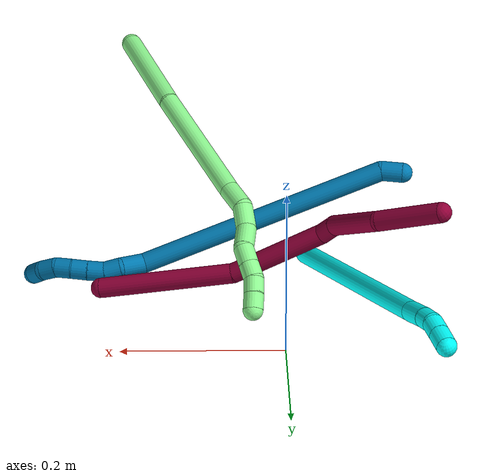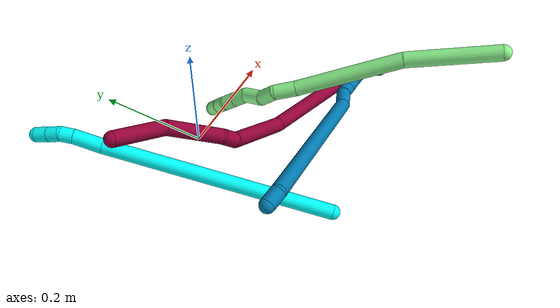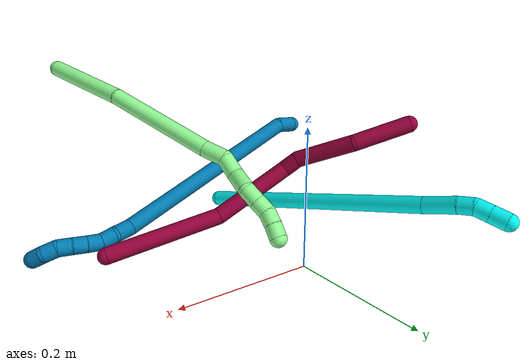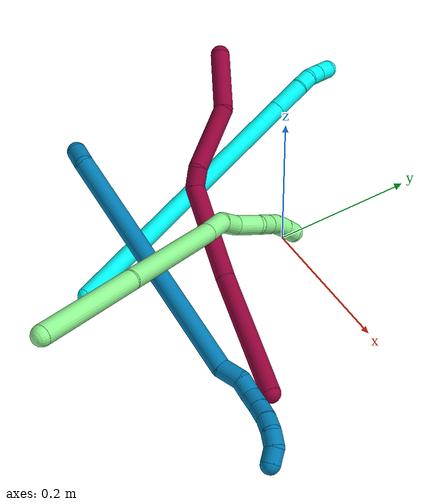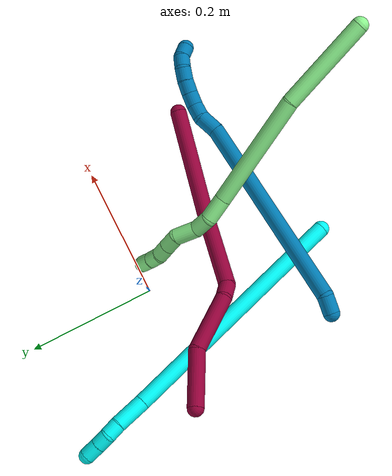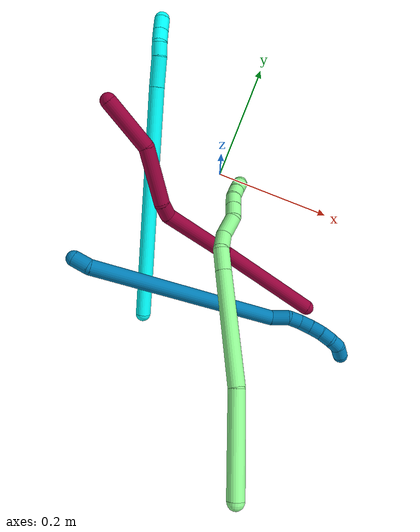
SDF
<sdf version="1.7">
 <world name="default">
  <model name="3">
   <static>0</static>
   <link name="3">
    <collision name="collision-cylinder-e_1_1_4">
     <pose>-0.020773 0.160827 0.103542 -0.998784 -0.10818 0.059054</pose>
     <geometry><cylinder><radius>0.0125</radius><length>0.3848</length></cylinder></geometry>
     <surface>
      <friction><ode><mu>1.16</mu><mu2>1.16</mu2><slip1>0</slip1><slip2>0</slip2></ode></friction>
      <contact><ode><kp>1e+06</kp><kd>1</kd><max_vel>0</max_vel><min_depth>0.001</min_depth></ode></contact>
     </surface>
    </collision>
    <visual name="visual-cylinder-e_1_1_4">
     <pose>-0.020773 0.160827 0.103542 -0.998784 -0.10818 0.059054</pose>
     <geometry><cylinder><radius>0.0125</radius><length>0.3848</length></cylinder></geometry>
     <material><ambient>0.003922 1 0.996078 1</ambient></material>
    </visual>
    <collision name="collision-cylinder-e_2_4_5">
     <pose>-0.043841 0.34127 0.221126 -0.949511 -0.094819 0.04876</pose>
     <geometry><cylinder><radius>0.0125</radius><length>0.048466</length></cylinder></geometry>
     <surface>
      <friction><ode><mu>1.16</mu><mu2>1.16</mu2><slip1>0</slip1><slip2>0</slip2></ode></friction>
      <contact><ode><kp>1e+06</kp><kd>1</kd><max_vel>0</max_vel><min_depth>0.001</min_depth></ode></contact>
     </surface>
    </collision>
    <visual name="visual-cylinder-e_2_4_5">
     <pose>-0.043841 0.34127 0.221126 -0.949511 -0.094819 0.04876</pose>
     <geometry><cylinder><radius>0.0125</radius><length>0.048466</length></cylinder></geometry>
     <material><ambient>0.003922 1 0.996078 1</ambient></material>
    </visual>
    <collision name="collision-cylinder-e_3_5_6">
     <pose>-0.047539 0.370578 0.240147 -1.09628 -0.128161 0.078316</pose>
     <geometry><cylinder><radius>0.0125</radius><length>0.021972</length></cylinder></geometry>
     <surface>
      <friction><ode><mu>1.16</mu><mu2>1.16</mu2><slip1>0</slip1><slip2>0</slip2></ode></friction>
      <contact><ode><kp>1e+06</kp><kd>1</kd><max_vel>0</max_vel><min_depth>0.001</min_depth></ode></contact>
     </surface>
    </collision>
    <visual name="visual-cylinder-e_3_5_6">
     <pose>-0.047539 0.370578 0.240147 -1.09628 -0.128161 0.078316</pose>
     <geometry><cylinder><radius>0.0125</radius><length>0.021972</length></cylinder></geometry>
     <material><ambient>0.003922 1 0.996078 1</ambient></material>
    </visual>
    <collision name="collision-cylinder-e_4_6_7">
     <pose>-0.048697 0.39068 0.246556 -1.43425 0.023457 -0.020454</pose>
     <geometry><cylinder><radius>0.0125</radius><length>0.021021</length></cylinder></geometry>
     <surface>
      <friction><ode><mu>1.16</mu><mu2>1.16</mu2><slip1>0</slip1><slip2>0</slip2></ode></friction>
      <contact><ode><kp>1e+06</kp><kd>1</kd><max_vel>0</max_vel><min_depth>0.001</min_depth></ode></contact>
     </surface>
    </collision>
    <visual name="visual-cylinder-e_4_6_7">
     <pose>-0.048697 0.39068 0.246556 -1.43425 0.023457 -0.020454</pose>
     <geometry><cylinder><radius>0.0125</radius><length>0.021021</length></cylinder></geometry>
     <material><ambient>0.003922 1 0.996078 1</ambient></material>
    </visual>
    <collision name="collision-cylinder-e_5_7_2">
     <pose>-0.047912 0.412819 0.249725 -1.42361 0.045369 -0.03914</pose>
     <geometry><cylinder><radius>0.0125</radius><length>0.023741</length></cylinder></geometry>
     <surface>
      <friction><ode><mu>1.16</mu><mu2>1.16</mu2><slip1>0</slip1><slip2>0</slip2></ode></friction>
      <contact><ode><kp>1e+06</kp><kd>1</kd><max_vel>0</max_vel><min_depth>0.001</min_depth></ode></contact>
     </surface>
    </collision>
    <visual name="visual-cylinder-e_5_7_2">
     <pose>-0.047912 0.412819 0.249725 -1.42361 0.045369 -0.03914</pose>
     <geometry><cylinder><radius>0.0125</radius><length>0.023741</length></cylinder></geometry>
     <material><ambient>0.003922 1 0.996078 1</ambient></material>
    </visual>
    <collision name="collision-sphere-2">
     <pose>-0.047374 0.42455 0.251464 0 -0 0</pose>
     <geometry><sphere><radius>0.0125</radius></sphere></geometry>
     <surface>
      <friction><ode><mu>1.16</mu><mu2>1.16</mu2><slip1>0</slip1><slip2>0</slip2></ode></friction>
      <contact><ode><kp>1e+06</kp><kd>1</kd><max_vel>0</max_vel><min_depth>0.001</min_depth></ode></contact>
     </surface>
    </collision>
    <visual name="visual-sphere-2">
     <pose>-0.047374 0.42455 0.251464 0 -0 0</pose>
     <geometry><sphere><radius>0.0125</radius></sphere></geometry>
     <material><ambient>0.003922 1 0.996078 1</ambient></material>
    </visual>
    <collision name="collision-sphere-7">
     <pose>-0.04845 0.401089 0.247986 0 -0 0</pose>
     <geometry><sphere><radius>0.0125</radius></sphere></geometry>
     <surface>
      <friction><ode><mu>1.16</mu><mu2>1.16</mu2><slip1>0</slip1><slip2>0</slip2></ode></friction>
      <contact><ode><kp>1e+06</kp><kd>1</kd><max_vel>0</max_vel><min_depth>0.001</min_depth></ode></contact>
     </surface>
    </collision>
    <visual name="visual-sphere-7">
     <pose>-0.04845 0.401089 0.247986 0 -0 0</pose>
     <geometry><sphere><radius>0.0125</radius></sphere></geometry>
     <material><ambient>0.003922 1 0.996078 1</ambient></material>
    </visual>
    <collision name="collision-sphere-6">
     <pose>-0.048943 0.38027 0.245125 0 -0 0</pose>
     <geometry><sphere><radius>0.0125</radius></sphere></geometry>
     <surface>
      <friction><ode><mu>1.16</mu><mu2>1.16</mu2><slip1>0</slip1><slip2>0</slip2></ode></friction>
      <contact><ode><kp>1e+06</kp><kd>1</kd><max_vel>0</max_vel><min_depth>0.001</min_depth></ode></contact>
     </surface>
    </collision>
    <visual name="visual-sphere-6">
     <pose>-0.048943 0.38027 0.245125 0 -0 0</pose>
     <geometry><sphere><radius>0.0125</radius></sphere></geometry>
     <material><ambient>0.003922 1 0.996078 1</ambient></material>
    </visual>
    <collision name="collision-sphere-5">
     <pose>-0.046135 0.360886 0.235168 0 -0 0</pose>
     <geometry><sphere><radius>0.0125</radius></sphere></geometry>
     <surface>
      <friction><ode><mu>1.16</mu><mu2>1.16</mu2><slip1>0</slip1><slip2>0</slip2></ode></friction>
      <contact><ode><kp>1e+06</kp><kd>1</kd><max_vel>0</max_vel><min_depth>0.001</min_depth></ode></contact>
     </surface>
    </collision>
    <visual name="visual-sphere-5">
     <pose>-0.046135 0.360886 0.235168 0 -0 0</pose>
     <geometry><sphere><radius>0.0125</radius></sphere></geometry>
     <material><ambient>0.003922 1 0.996078 1</ambient></material>
    </visual>
    <collision name="collision-sphere-1">
     <geometry><sphere><radius>0.0125</radius></sphere></geometry>
     <surface>
      <friction><ode><mu>1.16</mu><mu2>1.16</mu2><slip1>0</slip1><slip2>0</slip2></ode></friction>
      <contact><ode><kp>1e+06</kp><kd>1</kd><max_vel>0</max_vel><min_depth>0.001</min_depth></ode></contact>
     </surface>
    </collision>
    <visual name="visual-sphere-1">
     <geometry><sphere><radius>0.0125</radius></sphere></geometry>
     <material><ambient>0.003922 1 0.996078 1</ambient></material>
    </visual>
    <collision name="collision-sphere-4">
     <pose>-0.041546 0.321654 0.207084 0 -0 0</pose>
     <geometry><sphere><radius>0.0125</radius></sphere></geometry>
     <surface>
      <friction><ode><mu>1.16</mu><mu2>1.16</mu2><slip1>0</slip1><slip2>0</slip2></ode></friction>
      <contact><ode><kp>1e+06</kp><kd>1</kd><max_vel>0</max_vel><min_depth>0.001</min_depth></ode></contact>
     </surface>
    </collision>
    <visual name="visual-sphere-4">
     <pose>-0.041546 0.321654 0.207084 0 -0 0</pose>
     <geometry><sphere><radius>0.0125</radius></sphere></geometry>
     <material><ambient>0.003922 1 0.996078 1</ambient></material>
    </visual>
    <inertial>
     <pose>-0.026648 0.209163 0.133896 0 -0 0</pose>
     <mass>0.5</mass>
     <inertia>
      <ixx>0.00502</ixx>
      <ixy>0</ixy>
      <ixz>0</ixz>
      <iyy>0.002921</iyy>
      <iyz>0</iyz>
      <izz>-0.003461</izz>
     </inertia>
    </inertial>
   </link>
   <pose>-0.034795 -0.277907 0.01247 -0.406849 0.355201 0.250322</pose>
  </model>
  <model name="8">
   <static>0</static>
   <link name="8">
    <collision name="collision-cylinder-e_1_1_4">
     <pose>-0.07553 -0.034925 -0.021851 2.12986 -1.07146 -1.63994</pose>
     <geometry><cylinder><radius>0.0125</radius><length>0.17207</length></cylinder></geometry>
     <surface>
      <friction><ode><mu>1.16</mu><mu2>1.16</mu2><slip1>0</slip1><slip2>0</slip2></ode></friction>
      <contact><ode><kp>1e+06</kp><kd>1</kd><max_vel>0</max_vel><min_depth>0.001</min_depth></ode></contact>
     </surface>
    </collision>
    <visual name="visual-cylinder-e_1_1_4">
     <pose>-0.07553 -0.034925 -0.021851 2.12986 -1.07146 -1.63994</pose>
     <geometry><cylinder><radius>0.0125</radius><length>0.17207</length></cylinder></geometry>
     <material><ambient>0.584314 0 0.227451 1</ambient></material>
    </visual>
    <collision name="collision-cylinder-e_2_4_5">
     <pose>-0.204143 -0.103672 -0.042836 1.54524 -1.00336 -0.981948</pose>
     <geometry><cylinder><radius>0.0125</radius><length>0.125896</length></cylinder></geometry>
     <surface>
      <friction><ode><mu>1.16</mu><mu2>1.16</mu2><slip1>0</slip1><slip2>0</slip2></ode></friction>
      <contact><ode><kp>1e+06</kp><kd>1</kd><max_vel>0</max_vel><min_depth>0.001</min_depth></ode></contact>
     </surface>
    </collision>
    <visual name="visual-cylinder-e_2_4_5">
     <pose>-0.204143 -0.103672 -0.042836 1.54524 -1.00336 -0.981948</pose>
     <geometry><cylinder><radius>0.0125</radius><length>0.125896</length></cylinder></geometry>
     <material><ambient>0.584314 0 0.227451 1</ambient></material>
    </visual>
    <collision name="collision-cylinder-e_3_5_6">
     <pose>-0.268538 -0.140253 -0.037058 0.511633 -1.10863 -0.321039</pose>
     <geometry><cylinder><radius>0.0125</radius><length>0.025276</length></cylinder></geometry>
     <surface>
      <friction><ode><mu>1.16</mu><mu2>1.16</mu2><slip1>0</slip1><slip2>0</slip2></ode></friction>
      <contact><ode><kp>1e+06</kp><kd>1</kd><max_vel>0</max_vel><min_depth>0.001</min_depth></ode></contact>
     </surface>
    </collision>
    <visual name="visual-cylinder-e_3_5_6">
     <pose>-0.268538 -0.140253 -0.037058 0.511633 -1.10863 -0.321039</pose>
     <geometry><cylinder><radius>0.0125</radius><length>0.025276</length></cylinder></geometry>
     <material><ambient>0.584314 0 0.227451 1</ambient></material>
    </visual>
    <collision name="collision-cylinder-e_4_6_7">
     <pose>-0.323594 -0.138595 -0.021585 -0.39619 -1.31488 0.307482</pose>
     <geometry><cylinder><radius>0.0125</radius><length>0.090434</length></cylinder></geometry>
     <surface>
      <friction><ode><mu>1.16</mu><mu2>1.16</mu2><slip1>0</slip1><slip2>0</slip2></ode></friction>
      <contact><ode><kp>1e+06</kp><kd>1</kd><max_vel>0</max_vel><min_depth>0.001</min_depth></ode></contact>
     </surface>
    </collision>
    <visual name="visual-cylinder-e_4_6_7">
     <pose>-0.323594 -0.138595 -0.021585 -0.39619 -1.31488 0.307482</pose>
     <geometry><cylinder><radius>0.0125</radius><length>0.090434</length></cylinder></geometry>
     <material><ambient>0.584314 0 0.227451 1</ambient></material>
    </visual>
    <collision name="collision-cylinder-e_5_7_2">
     <pose>-0.409301 -0.144106 -0.012916 1.75886 -1.33445 -1.52142</pose>
     <geometry><cylinder><radius>0.0125</radius><length>0.086325</length></cylinder></geometry>
     <surface>
      <friction><ode><mu>1.16</mu><mu2>1.16</mu2><slip1>0</slip1><slip2>0</slip2></ode></friction>
      <contact><ode><kp>1e+06</kp><kd>1</kd><max_vel>0</max_vel><min_depth>0.001</min_depth></ode></contact>
     </surface>
    </collision>
    <visual name="visual-cylinder-e_5_7_2">
     <pose>-0.409301 -0.144106 -0.012916 1.75886 -1.33445 -1.52142</pose>
     <geometry><cylinder><radius>0.0125</radius><length>0.086325</length></cylinder></geometry>
     <material><ambient>0.584314 0 0.227451 1</ambient></material>
    </visual>
    <collision name="collision-sphere-2">
     <pose>-0.451263 -0.154034 -0.014805 0 -0 0</pose>
     <geometry><sphere><radius>0.0125</radius></sphere></geometry>
     <surface>
      <friction><ode><mu>1.16</mu><mu2>1.16</mu2><slip1>0</slip1><slip2>0</slip2></ode></friction>
      <contact><ode><kp>1e+06</kp><kd>1</kd><max_vel>0</max_vel><min_depth>0.001</min_depth></ode></contact>
     </surface>
    </collision>
    <visual name="visual-sphere-2">
     <pose>-0.451263 -0.154034 -0.014805 0 -0 0</pose>
     <geometry><sphere><radius>0.0125</radius></sphere></geometry>
     <material><ambient>0.584314 0 0.227451 1</ambient></material>
    </visual>
    <collision name="collision-sphere-7">
     <pose>-0.367338 -0.134178 -0.011026 0 -0 0</pose>
     <geometry><sphere><radius>0.0125</radius></sphere></geometry>
     <surface>
      <friction><ode><mu>1.16</mu><mu2>1.16</mu2><slip1>0</slip1><slip2>0</slip2></ode></friction>
      <contact><ode><kp>1e+06</kp><kd>1</kd><max_vel>0</max_vel><min_depth>0.001</min_depth></ode></contact>
     </surface>
    </collision>
    <visual name="visual-sphere-7">
     <pose>-0.367338 -0.134178 -0.011026 0 -0 0</pose>
     <geometry><sphere><radius>0.0125</radius></sphere></geometry>
     <material><ambient>0.584314 0 0.227451 1</ambient></material>
    </visual>
    <collision name="collision-sphere-6">
     <pose>-0.27985 -0.143012 -0.032145 0 -0 0</pose>
     <geometry><sphere><radius>0.0125</radius></sphere></geometry>
     <surface>
      <friction><ode><mu>1.16</mu><mu2>1.16</mu2><slip1>0</slip1><slip2>0</slip2></ode></friction>
      <contact><ode><kp>1e+06</kp><kd>1</kd><max_vel>0</max_vel><min_depth>0.001</min_depth></ode></contact>
     </surface>
    </collision>
    <visual name="visual-sphere-6">
     <pose>-0.27985 -0.143012 -0.032145 0 -0 0</pose>
     <geometry><sphere><radius>0.0125</radius></sphere></geometry>
     <material><ambient>0.584314 0 0.227451 1</ambient></material>
    </visual>
    <collision name="collision-sphere-5">
     <pose>-0.257226 -0.137494 -0.041972 0 -0 0</pose>
     <geometry><sphere><radius>0.0125</radius></sphere></geometry>
     <surface>
      <friction><ode><mu>1.16</mu><mu2>1.16</mu2><slip1>0</slip1><slip2>0</slip2></ode></friction>
      <contact><ode><kp>1e+06</kp><kd>1</kd><max_vel>0</max_vel><min_depth>0.001</min_depth></ode></contact>
     </surface>
    </collision>
    <visual name="visual-sphere-5">
     <pose>-0.257226 -0.137494 -0.041972 0 -0 0</pose>
     <geometry><sphere><radius>0.0125</radius></sphere></geometry>
     <material><ambient>0.584314 0 0.227451 1</ambient></material>
    </visual>
    <collision name="collision-sphere-1">
     <geometry><sphere><radius>0.0125</radius></sphere></geometry>
     <surface>
      <friction><ode><mu>1.16</mu><mu2>1.16</mu2><slip1>0</slip1><slip2>0</slip2></ode></friction>
      <contact><ode><kp>1e+06</kp><kd>1</kd><max_vel>0</max_vel><min_depth>0.001</min_depth></ode></contact>
     </surface>
    </collision>
    <visual name="visual-sphere-1">
     <geometry><sphere><radius>0.0125</radius></sphere></geometry>
     <material><ambient>0.584314 0 0.227451 1</ambient></material>
    </visual>
    <collision name="collision-sphere-4">
     <pose>-0.151061 -0.06985 -0.043701 0 -0 0</pose>
     <geometry><sphere><radius>0.0125</radius></sphere></geometry>
     <surface>
      <friction><ode><mu>1.16</mu><mu2>1.16</mu2><slip1>0</slip1><slip2>0</slip2></ode></friction>
      <contact><ode><kp>1e+06</kp><kd>1</kd><max_vel>0</max_vel><min_depth>0.001</min_depth></ode></contact>
     </surface>
    </collision>
    <visual name="visual-sphere-4">
     <pose>-0.151061 -0.06985 -0.043701 0 -0 0</pose>
     <geometry><sphere><radius>0.0125</radius></sphere></geometry>
     <material><ambient>0.584314 0 0.227451 1</ambient></material>
    </visual>
    <inertial>
     <pose>-0.220163 -0.09516 -0.026313 0 -0 0</pose>
     <mass>0.5</mass>
     <inertia>
      <ixx>-0.000272</ixx>
      <ixy>0</ixy>
      <ixz>0</ixz>
      <iyy>0.000276</iyy>
      <iyz>0</iyz>
      <izz>0.000917</izz>
     </inertia>
    </inertial>
   </link>
   <pose>0.225449 -0.163772 0.014687 -0.556108 0.228023 -0.729064</pose>
  </model>
  <model name="9">
   <static>0</static>
   <link name="9">
    <collision name="collision-cylinder-e_1_1_4">
     <pose>0.007217 0.006273 0.009375 -0.589666 0.569129 -0.177192</pose>
     <geometry><cylinder><radius>0.0125</radius><length>0.026783</length></cylinder></geometry>
     <surface>
      <friction><ode><mu>1.16</mu><mu2>1.16</mu2><slip1>0</slip1><slip2>0</slip2></ode></friction>
      <contact><ode><kp>1e+06</kp><kd>1</kd><max_vel>0</max_vel><min_depth>0.001</min_depth></ode></contact>
     </surface>
    </collision>
    <visual name="visual-cylinder-e_1_1_4">
     <pose>0.007217 0.006273 0.009375 -0.589666 0.569129 -0.177192</pose>
     <geometry><cylinder><radius>0.0125</radius><length>0.026783</length></cylinder></geometry>
     <material><ambient>0 0.490196 0.709804 1</ambient></material>
    </visual>
    <collision name="collision-cylinder-e_2_4_5">
     <pose>0.140917 0.095302 0.070564 -1.01141 0.913404 -0.531293</pose>
     <geometry><cylinder><radius>0.0125</radius><length>0.31957</length></cylinder></geometry>
     <surface>
      <friction><ode><mu>1.16</mu><mu2>1.16</mu2><slip1>0</slip1><slip2>0</slip2></ode></friction>
      <contact><ode><kp>1e+06</kp><kd>1</kd><max_vel>0</max_vel><min_depth>0.001</min_depth></ode></contact>
     </surface>
    </collision>
    <visual name="visual-cylinder-e_2_4_5">
     <pose>0.140917 0.095302 0.070564 -1.01141 0.913404 -0.531293</pose>
     <geometry><cylinder><radius>0.0125</radius><length>0.31957</length></cylinder></geometry>
     <material><ambient>0 0.490196 0.709804 1</ambient></material>
    </visual>
    <collision name="collision-cylinder-e_3_5_6">
     <pose>0.274604 0.190574 0.127764 -1.16431 0.486239 -0.323671</pose>
     <geometry><cylinder><radius>0.0125</radius><length>0.030827</length></cylinder></geometry>
     <surface>
      <friction><ode><mu>1.16</mu><mu2>1.16</mu2><slip1>0</slip1><slip2>0</slip2></ode></friction>
      <contact><ode><kp>1e+06</kp><kd>1</kd><max_vel>0</max_vel><min_depth>0.001</min_depth></ode></contact>
     </surface>
    </collision>
    <visual name="visual-cylinder-e_3_5_6">
     <pose>0.274604 0.190574 0.127764 -1.16431 0.486239 -0.323671</pose>
     <geometry><cylinder><radius>0.0125</radius><length>0.030827</length></cylinder></geometry>
     <material><ambient>0 0.490196 0.709804 1</ambient></material>
    </visual>
    <collision name="collision-cylinder-e_4_6_7">
     <pose>0.289933 0.208496 0.137797 -0.860895 0.850807 -0.410214</pose>
     <geometry><cylinder><radius>0.0125</radius><length>0.021619</length></cylinder></geometry>
     <surface>
      <friction><ode><mu>1.16</mu><mu2>1.16</mu2><slip1>0</slip1><slip2>0</slip2></ode></friction>
      <contact><ode><kp>1e+06</kp><kd>1</kd><max_vel>0</max_vel><min_depth>0.001</min_depth></ode></contact>
     </surface>
    </collision>
    <visual name="visual-cylinder-e_4_6_7">
     <pose>0.289933 0.208496 0.137797 -0.860895 0.850807 -0.410214</pose>
     <geometry><cylinder><radius>0.0125</radius><length>0.021619</length></cylinder></geometry>
     <material><ambient>0 0.490196 0.709804 1</ambient></material>
    </visual>
    <collision name="collision-cylinder-e_5_7_8">
     <pose>0.30362 0.219292 0.149649 -0.642216 0.553419 -0.188366</pose>
     <geometry><cylinder><radius>0.0125</radius><length>0.021155</length></cylinder></geometry>
     <surface>
      <friction><ode><mu>1.16</mu><mu2>1.16</mu2><slip1>0</slip1><slip2>0</slip2></ode></friction>
      <contact><ode><kp>1e+06</kp><kd>1</kd><max_vel>0</max_vel><min_depth>0.001</min_depth></ode></contact>
     </surface>
    </collision>
    <visual name="visual-cylinder-e_5_7_8">
     <pose>0.30362 0.219292 0.149649 -0.642216 0.553419 -0.188366</pose>
     <geometry><cylinder><radius>0.0125</radius><length>0.021155</length></cylinder></geometry>
     <material><ambient>0 0.490196 0.709804 1</ambient></material>
    </visual>
    <collision name="collision-cylinder-e_6_8_9">
     <pose>0.314464 0.229323 0.163981 -0.57728 0.556004 -0.16908</pose>
     <geometry><cylinder><radius>0.0125</radius><length>0.020025</length></cylinder></geometry>
     <surface>
      <friction><ode><mu>1.16</mu><mu2>1.16</mu2><slip1>0</slip1><slip2>0</slip2></ode></friction>
      <contact><ode><kp>1e+06</kp><kd>1</kd><max_vel>0</max_vel><min_depth>0.001</min_depth></ode></contact>
     </surface>
    </collision>
    <visual name="visual-cylinder-e_6_8_9">
     <pose>0.314464 0.229323 0.163981 -0.57728 0.556004 -0.16908</pose>
     <geometry><cylinder><radius>0.0125</radius><length>0.020025</length></cylinder></geometry>
     <material><ambient>0 0.490196 0.709804 1</ambient></material>
    </visual>
    <collision name="collision-cylinder-e_7_9_10">
     <pose>0.325754 0.237271 0.178395 -0.425958 0.643799 -0.143995</pose>
     <geometry><cylinder><radius>0.0125</radius><length>0.020011</length></cylinder></geometry>
     <surface>
      <friction><ode><mu>1.16</mu><mu2>1.16</mu2><slip1>0</slip1><slip2>0</slip2></ode></friction>
      <contact><ode><kp>1e+06</kp><kd>1</kd><max_vel>0</max_vel><min_depth>0.001</min_depth></ode></contact>
     </surface>
    </collision>
    <visual name="visual-cylinder-e_7_9_10">
     <pose>0.325754 0.237271 0.178395 -0.425958 0.643799 -0.143995</pose>
     <geometry><cylinder><radius>0.0125</radius><length>0.020011</length></cylinder></geometry>
     <material><ambient>0 0.490196 0.709804 1</ambient></material>
    </visual>
    <collision name="collision-cylinder-e_8_10_11">
     <pose>0.340152 0.242277 0.190855 -0.317504 0.995278 -0.173508</pose>
     <geometry><cylinder><radius>0.0125</radius><length>0.020007</length></cylinder></geometry>
     <surface>
      <friction><ode><mu>1.16</mu><mu2>1.16</mu2><slip1>0</slip1><slip2>0</slip2></ode></friction>
      <contact><ode><kp>1e+06</kp><kd>1</kd><max_vel>0</max_vel><min_depth>0.001</min_depth></ode></contact>
     </surface>
    </collision>
    <visual name="visual-cylinder-e_8_10_11">
     <pose>0.340152 0.242277 0.190855 -0.317504 0.995278 -0.173508</pose>
     <geometry><cylinder><radius>0.0125</radius><length>0.020007</length></cylinder></geometry>
     <material><ambient>0 0.490196 0.709804 1</ambient></material>
    </visual>
    <collision name="collision-cylinder-e_9_11_2">
     <pose>0.357095 0.241192 0.200404 0.566612 1.02546 0.324902</pose>
     <geometry><cylinder><radius>0.0125</radius><length>0.020003</length></cylinder></geometry>
     <surface>
      <friction><ode><mu>1.16</mu><mu2>1.16</mu2><slip1>0</slip1><slip2>0</slip2></ode></friction>
      <contact><ode><kp>1e+06</kp><kd>1</kd><max_vel>0</max_vel><min_depth>0.001</min_depth></ode></contact>
     </surface>
    </collision>
    <visual name="visual-cylinder-e_9_11_2">
     <pose>0.357095 0.241192 0.200404 0.566612 1.02546 0.324902</pose>
     <geometry><cylinder><radius>0.0125</radius><length>0.020003</length></cylinder></geometry>
     <material><ambient>0 0.490196 0.709804 1</ambient></material>
    </visual>
    <collision name="collision-sphere-2">
     <pose>0.365646 0.238408 0.204781 0 -0 0</pose>
     <geometry><sphere><radius>0.0125</radius></sphere></geometry>
     <surface>
      <friction><ode><mu>1.16</mu><mu2>1.16</mu2><slip1>0</slip1><slip2>0</slip2></ode></friction>
      <contact><ode><kp>1e+06</kp><kd>1</kd><max_vel>0</max_vel><min_depth>0.001</min_depth></ode></contact>
     </surface>
    </collision>
    <visual name="visual-sphere-2">
     <pose>0.365646 0.238408 0.204781 0 -0 0</pose>
     <geometry><sphere><radius>0.0125</radius></sphere></geometry>
     <material><ambient>0 0.490196 0.709804 1</ambient></material>
    </visual>
    <collision name="collision-sphere-11">
     <pose>0.348544 0.243977 0.196027 0 -0 0</pose>
     <geometry><sphere><radius>0.0125</radius></sphere></geometry>
     <surface>
      <friction><ode><mu>1.16</mu><mu2>1.16</mu2><slip1>0</slip1><slip2>0</slip2></ode></friction>
      <contact><ode><kp>1e+06</kp><kd>1</kd><max_vel>0</max_vel><min_depth>0.001</min_depth></ode></contact>
     </surface>
    </collision>
    <visual name="visual-sphere-11">
     <pose>0.348544 0.243977 0.196027 0 -0 0</pose>
     <geometry><sphere><radius>0.0125</radius></sphere></geometry>
     <material><ambient>0 0.490196 0.709804 1</ambient></material>
    </visual>
    <collision name="collision-sphere-10">
     <pose>0.33176 0.240578 0.185682 0 -0 0</pose>
     <geometry><sphere><radius>0.0125</radius></sphere></geometry>
     <surface>
      <friction><ode><mu>1.16</mu><mu2>1.16</mu2><slip1>0</slip1><slip2>0</slip2></ode></friction>
      <contact><ode><kp>1e+06</kp><kd>1</kd><max_vel>0</max_vel><min_depth>0.001</min_depth></ode></contact>
     </surface>
    </collision>
    <visual name="visual-sphere-10">
     <pose>0.33176 0.240578 0.185682 0 -0 0</pose>
     <geometry><sphere><radius>0.0125</radius></sphere></geometry>
     <material><ambient>0 0.490196 0.709804 1</ambient></material>
    </visual>
    <collision name="collision-sphere-9">
     <pose>0.319748 0.233964 0.171107 0 -0 0</pose>
     <geometry><sphere><radius>0.0125</radius></sphere></geometry>
     <surface>
      <friction><ode><mu>1.16</mu><mu2>1.16</mu2><slip1>0</slip1><slip2>0</slip2></ode></friction>
      <contact><ode><kp>1e+06</kp><kd>1</kd><max_vel>0</max_vel><min_depth>0.001</min_depth></ode></contact>
     </surface>
    </collision>
    <visual name="visual-sphere-9">
     <pose>0.319748 0.233964 0.171107 0 -0 0</pose>
     <geometry><sphere><radius>0.0125</radius></sphere></geometry>
     <material><ambient>0 0.490196 0.709804 1</ambient></material>
    </visual>
    <collision name="collision-sphere-4">
     <pose>0.014433 0.012546 0.018751 0 -0 0</pose>
     <geometry><sphere><radius>0.0125</radius></sphere></geometry>
     <surface>
      <friction><ode><mu>1.16</mu><mu2>1.16</mu2><slip1>0</slip1><slip2>0</slip2></ode></friction>
      <contact><ode><kp>1e+06</kp><kd>1</kd><max_vel>0</max_vel><min_depth>0.001</min_depth></ode></contact>
     </surface>
    </collision>
    <visual name="visual-sphere-4">
     <pose>0.014433 0.012546 0.018751 0 -0 0</pose>
     <geometry><sphere><radius>0.0125</radius></sphere></geometry>
     <material><ambient>0 0.490196 0.709804 1</ambient></material>
    </visual>
    <collision name="collision-sphere-1">
     <geometry><sphere><radius>0.0125</radius></sphere></geometry>
     <surface>
      <friction><ode><mu>1.16</mu><mu2>1.16</mu2><slip1>0</slip1><slip2>0</slip2></ode></friction>
      <contact><ode><kp>1e+06</kp><kd>1</kd><max_vel>0</max_vel><min_depth>0.001</min_depth></ode></contact>
     </surface>
    </collision>
    <visual name="visual-sphere-1">
     <geometry><sphere><radius>0.0125</radius></sphere></geometry>
     <material><ambient>0 0.490196 0.709804 1</ambient></material>
    </visual>
    <collision name="collision-sphere-8">
     <pose>0.309179 0.224682 0.156854 0 -0 0</pose>
     <geometry><sphere><radius>0.0125</radius></sphere></geometry>
     <surface>
      <friction><ode><mu>1.16</mu><mu2>1.16</mu2><slip1>0</slip1><slip2>0</slip2></ode></friction>
      <contact><ode><kp>1e+06</kp><kd>1</kd><max_vel>0</max_vel><min_depth>0.001</min_depth></ode></contact>
     </surface>
    </collision>
    <visual name="visual-sphere-8">
     <pose>0.309179 0.224682 0.156854 0 -0 0</pose>
     <geometry><sphere><radius>0.0125</radius></sphere></geometry>
     <material><ambient>0 0.490196 0.709804 1</ambient></material>
    </visual>
    <collision name="collision-sphere-5">
     <pose>0.267401 0.178057 0.122376 0 -0 0</pose>
     <geometry><sphere><radius>0.0125</radius></sphere></geometry>
     <surface>
      <friction><ode><mu>1.16</mu><mu2>1.16</mu2><slip1>0</slip1><slip2>0</slip2></ode></friction>
      <contact><ode><kp>1e+06</kp><kd>1</kd><max_vel>0</max_vel><min_depth>0.001</min_depth></ode></contact>
     </surface>
    </collision>
    <visual name="visual-sphere-5">
     <pose>0.267401 0.178057 0.122376 0 -0 0</pose>
     <geometry><sphere><radius>0.0125</radius></sphere></geometry>
     <material><ambient>0 0.490196 0.709804 1</ambient></material>
    </visual>
    <collision name="collision-sphere-6">
     <pose>0.281806 0.20309 0.133152 0 -0 0</pose>
     <geometry><sphere><radius>0.0125</radius></sphere></geometry>
     <surface>
      <friction><ode><mu>1.16</mu><mu2>1.16</mu2><slip1>0</slip1><slip2>0</slip2></ode></friction>
      <contact><ode><kp>1e+06</kp><kd>1</kd><max_vel>0</max_vel><min_depth>0.001</min_depth></ode></contact>
     </surface>
    </collision>
    <visual name="visual-sphere-6">
     <pose>0.281806 0.20309 0.133152 0 -0 0</pose>
     <geometry><sphere><radius>0.0125</radius></sphere></geometry>
     <material><ambient>0 0.490196 0.709804 1</ambient></material>
    </visual>
    <collision name="collision-sphere-7">
     <pose>0.29806 0.213902 0.142443 0 -0 0</pose>
     <geometry><sphere><radius>0.0125</radius></sphere></geometry>
     <surface>
      <friction><ode><mu>1.16</mu><mu2>1.16</mu2><slip1>0</slip1><slip2>0</slip2></ode></friction>
      <contact><ode><kp>1e+06</kp><kd>1</kd><max_vel>0</max_vel><min_depth>0.001</min_depth></ode></contact>
     </surface>
    </collision>
    <visual name="visual-sphere-7">
     <pose>0.29806 0.213902 0.142443 0 -0 0</pose>
     <geometry><sphere><radius>0.0125</radius></sphere></geometry>
     <material><ambient>0 0.490196 0.709804 1</ambient></material>
    </visual>
    <inertial>
     <pose>0.186294 0.129314 0.095131 0 -0 0</pose>
     <mass>0.5</mass>
     <inertia>
      <ixx>0.000631</ixx>
      <ixy>0</ixy>
      <ixz>0</ixz>
      <iyy>0.001361</iyy>
      <iyz>0</iyz>
      <izz>-0.003578</izz>
     </inertia>
    </inertial>
   </link>
   <pose>-0.152582 -0.21974 0.144589 0.294609 0.926571 -0.372081</pose>
  </model>
  <model name="13">
   <static>0</static>
   <link name="13">
    <collision name="collision-cylinder-e_1_1_4">
     <pose>-0.005204 0.001367 -0.070931 -3.12232 -0.073229 2.62711</pose>
     <geometry><cylinder><radius>0.0125</radius><length>0.142269</length></cylinder></geometry>
     <surface>
      <friction><ode><mu>1.16</mu><mu2>1.16</mu2><slip1>0</slip1><slip2>0</slip2></ode></friction>
      <contact><ode><kp>1e+06</kp><kd>1</kd><max_vel>0</max_vel><min_depth>0.001</min_depth></ode></contact>
     </surface>
    </collision>
    <visual name="visual-cylinder-e_1_1_4">
     <pose>-0.005204 0.001367 -0.070931 -3.12232 -0.073229 2.62711</pose>
     <geometry><cylinder><radius>0.0125</radius><length>0.142269</length></cylinder></geometry>
     <material><ambient>0.564706 0.984314 0.572549 1</ambient></material>
    </visual>
    <collision name="collision-cylinder-e_2_4_5">
     <pose>-0.031564 0.011077 -0.225135 -3.04174 -0.247588 2.37789</pose>
     <geometry><cylinder><radius>0.0125</radius><length>0.172646</length></cylinder></geometry>
     <surface>
      <friction><ode><mu>1.16</mu><mu2>1.16</mu2><slip1>0</slip1><slip2>0</slip2></ode></friction>
      <contact><ode><kp>1e+06</kp><kd>1</kd><max_vel>0</max_vel><min_depth>0.001</min_depth></ode></contact>
     </surface>
    </collision>
    <visual name="visual-cylinder-e_2_4_5">
     <pose>-0.031564 0.011077 -0.225135 -3.04174 -0.247588 2.37789</pose>
     <geometry><cylinder><radius>0.0125</radius><length>0.172646</length></cylinder></geometry>
     <material><ambient>0.564706 0.984314 0.572549 1</ambient></material>
    </visual>
    <collision name="collision-cylinder-e_3_5_6">
     <pose>-0.055499 0.021458 -0.325789 -3.02485 -0.157574 1.86722</pose>
     <geometry><cylinder><radius>0.0125</radius><length>0.035438</length></cylinder></geometry>
     <surface>
      <friction><ode><mu>1.16</mu><mu2>1.16</mu2><slip1>0</slip1><slip2>0</slip2></ode></friction>
      <contact><ode><kp>1e+06</kp><kd>1</kd><max_vel>0</max_vel><min_depth>0.001</min_depth></ode></contact>
     </surface>
    </collision>
    <visual name="visual-cylinder-e_3_5_6">
     <pose>-0.055499 0.021458 -0.325789 -3.02485 -0.157574 1.86722</pose>
     <geometry><cylinder><radius>0.0125</radius><length>0.035438</length></cylinder></geometry>
     <material><ambient>0.564706 0.984314 0.572549 1</ambient></material>
    </visual>
    <collision name="collision-cylinder-e_4_6_7">
     <pose>-0.065918 0.020166 -0.355821 2.88426 -0.528502 -2.24953</pose>
     <geometry><cylinder><radius>0.0125</radius><length>0.030299</length></cylinder></geometry>
     <surface>
      <friction><ode><mu>1.16</mu><mu2>1.16</mu2><slip1>0</slip1><slip2>0</slip2></ode></friction>
      <contact><ode><kp>1e+06</kp><kd>1</kd><max_vel>0</max_vel><min_depth>0.001</min_depth></ode></contact>
     </surface>
    </collision>
    <visual name="visual-cylinder-e_4_6_7">
     <pose>-0.065918 0.020166 -0.355821 2.88426 -0.528502 -2.24953</pose>
     <geometry><cylinder><radius>0.0125</radius><length>0.030299</length></cylinder></geometry>
     <material><ambient>0.564706 0.984314 0.572549 1</ambient></material>
    </visual>
    <collision name="collision-cylinder-e_5_7_8">
     <pose>-0.07554 0.009342 -0.383814 2.68717 -0.115602 -0.490482</pose>
     <geometry><cylinder><radius>0.0125</radius><length>0.034378</length></cylinder></geometry>
     <surface>
      <friction><ode><mu>1.16</mu><mu2>1.16</mu2><slip1>0</slip1><slip2>0</slip2></ode></friction>
      <contact><ode><kp>1e+06</kp><kd>1</kd><max_vel>0</max_vel><min_depth>0.001</min_depth></ode></contact>
     </surface>
    </collision>
    <visual name="visual-cylinder-e_5_7_8">
     <pose>-0.07554 0.009342 -0.383814 2.68717 -0.115602 -0.490482</pose>
     <geometry><cylinder><radius>0.0125</radius><length>0.034378</length></cylinder></geometry>
     <material><ambient>0.564706 0.984314 0.572549 1</ambient></material>
    </visual>
    <collision name="collision-cylinder-e_6_8_9">
     <pose>-0.082791 0.000675 -0.409905 3.0329 -0.453424 -2.67842</pose>
     <geometry><cylinder><radius>0.0125</radius><length>0.024056</length></cylinder></geometry>
     <surface>
      <friction><ode><mu>1.16</mu><mu2>1.16</mu2><slip1>0</slip1><slip2>0</slip2></ode></friction>
      <contact><ode><kp>1e+06</kp><kd>1</kd><max_vel>0</max_vel><min_depth>0.001</min_depth></ode></contact>
     </surface>
    </collision>
    <visual name="visual-cylinder-e_6_8_9">
     <pose>-0.082791 0.000675 -0.409905 3.0329 -0.453424 -2.67842</pose>
     <geometry><cylinder><radius>0.0125</radius><length>0.024056</length></cylinder></geometry>
     <material><ambient>0.564706 0.984314 0.572549 1</ambient></material>
    </visual>
    <collision name="collision-cylinder-e_7_9_10">
     <pose>-0.092485 -0.001352 -0.429777 3.04827 -0.449876 -2.73899</pose>
     <geometry><cylinder><radius>0.0125</radius><length>0.020351</length></cylinder></geometry>
     <surface>
      <friction><ode><mu>1.16</mu><mu2>1.16</mu2><slip1>0</slip1><slip2>0</slip2></ode></friction>
      <contact><ode><kp>1e+06</kp><kd>1</kd><max_vel>0</max_vel><min_depth>0.001</min_depth></ode></contact>
     </surface>
    </collision>
    <visual name="visual-cylinder-e_7_9_10">
     <pose>-0.092485 -0.001352 -0.429777 3.04827 -0.449876 -2.73899</pose>
     <geometry><cylinder><radius>0.0125</radius><length>0.020351</length></cylinder></geometry>
     <material><ambient>0.564706 0.984314 0.572549 1</ambient></material>
    </visual>
    <collision name="collision-cylinder-e_8_10_11">
     <pose>-0.102067 -0.00589 -0.446745 2.70257 -0.536801 -1.77855</pose>
     <geometry><cylinder><radius>0.0125</radius><length>0.020169</length></cylinder></geometry>
     <surface>
      <friction><ode><mu>1.16</mu><mu2>1.16</mu2><slip1>0</slip1><slip2>0</slip2></ode></friction>
      <contact><ode><kp>1e+06</kp><kd>1</kd><max_vel>0</max_vel><min_depth>0.001</min_depth></ode></contact>
     </surface>
    </collision>
    <visual name="visual-cylinder-e_8_10_11">
     <pose>-0.102067 -0.00589 -0.446745 2.70257 -0.536801 -1.77855</pose>
     <geometry><cylinder><radius>0.0125</radius><length>0.020169</length></cylinder></geometry>
     <material><ambient>0.564706 0.984314 0.572549 1</ambient></material>
    </visual>
    <collision name="collision-cylinder-e_9_11_2">
     <pose>-0.112783 -0.013735 -0.462056 2.63314 -0.57654 -1.70246</pose>
     <geometry><cylinder><radius>0.0125</radius><length>0.020394</length></cylinder></geometry>
     <surface>
      <friction><ode><mu>1.16</mu><mu2>1.16</mu2><slip1>0</slip1><slip2>0</slip2></ode></friction>
      <contact><ode><kp>1e+06</kp><kd>1</kd><max_vel>0</max_vel><min_depth>0.001</min_depth></ode></contact>
     </surface>
    </collision>
    <visual name="visual-cylinder-e_9_11_2">
     <pose>-0.112783 -0.013735 -0.462056 2.63314 -0.57654 -1.70246</pose>
     <geometry><cylinder><radius>0.0125</radius><length>0.020394</length></cylinder></geometry>
     <material><ambient>0.564706 0.984314 0.572549 1</ambient></material>
    </visual>
    <collision name="collision-sphere-2">
     <pose>-0.118342 -0.017896 -0.469523 0 -0 0</pose>
     <geometry><sphere><radius>0.0125</radius></sphere></geometry>
     <surface>
      <friction><ode><mu>1.16</mu><mu2>1.16</mu2><slip1>0</slip1><slip2>0</slip2></ode></friction>
      <contact><ode><kp>1e+06</kp><kd>1</kd><max_vel>0</max_vel><min_depth>0.001</min_depth></ode></contact>
     </surface>
    </collision>
    <visual name="visual-sphere-2">
     <pose>-0.118342 -0.017896 -0.469523 0 -0 0</pose>
     <geometry><sphere><radius>0.0125</radius></sphere></geometry>
     <material><ambient>0.564706 0.984314 0.572549 1</ambient></material>
    </visual>
    <collision name="collision-sphere-11">
     <pose>-0.107224 -0.009573 -0.454589 0 -0 0</pose>
     <geometry><sphere><radius>0.0125</radius></sphere></geometry>
     <surface>
      <friction><ode><mu>1.16</mu><mu2>1.16</mu2><slip1>0</slip1><slip2>0</slip2></ode></friction>
      <contact><ode><kp>1e+06</kp><kd>1</kd><max_vel>0</max_vel><min_depth>0.001</min_depth></ode></contact>
     </surface>
    </collision>
    <visual name="visual-sphere-11">
     <pose>-0.107224 -0.009573 -0.454589 0 -0 0</pose>
     <geometry><sphere><radius>0.0125</radius></sphere></geometry>
     <material><ambient>0.564706 0.984314 0.572549 1</ambient></material>
    </visual>
    <collision name="collision-sphere-10">
     <pose>-0.09691 -0.002206 -0.4389 0 -0 0</pose>
     <geometry><sphere><radius>0.0125</radius></sphere></geometry>
     <surface>
      <friction><ode><mu>1.16</mu><mu2>1.16</mu2><slip1>0</slip1><slip2>0</slip2></ode></friction>
      <contact><ode><kp>1e+06</kp><kd>1</kd><max_vel>0</max_vel><min_depth>0.001</min_depth></ode></contact>
     </surface>
    </collision>
    <visual name="visual-sphere-10">
     <pose>-0.09691 -0.002206 -0.4389 0 -0 0</pose>
     <geometry><sphere><radius>0.0125</radius></sphere></geometry>
     <material><ambient>0.564706 0.984314 0.572549 1</ambient></material>
    </visual>
    <collision name="collision-sphere-9">
     <pose>-0.08806 -0.000498 -0.420654 0 -0 0</pose>
     <geometry><sphere><radius>0.0125</radius></sphere></geometry>
     <surface>
      <friction><ode><mu>1.16</mu><mu2>1.16</mu2><slip1>0</slip1><slip2>0</slip2></ode></friction>
      <contact><ode><kp>1e+06</kp><kd>1</kd><max_vel>0</max_vel><min_depth>0.001</min_depth></ode></contact>
     </surface>
    </collision>
    <visual name="visual-sphere-9">
     <pose>-0.08806 -0.000498 -0.420654 0 -0 0</pose>
     <geometry><sphere><radius>0.0125</radius></sphere></geometry>
     <material><ambient>0.564706 0.984314 0.572549 1</ambient></material>
    </visual>
    <collision name="collision-sphere-4">
     <pose>-0.010409 0.002734 -0.141862 0 -0 0</pose>
     <geometry><sphere><radius>0.0125</radius></sphere></geometry>
     <surface>
      <friction><ode><mu>1.16</mu><mu2>1.16</mu2><slip1>0</slip1><slip2>0</slip2></ode></friction>
      <contact><ode><kp>1e+06</kp><kd>1</kd><max_vel>0</max_vel><min_depth>0.001</min_depth></ode></contact>
     </surface>
    </collision>
    <visual name="visual-sphere-4">
     <pose>-0.010409 0.002734 -0.141862 0 -0 0</pose>
     <geometry><sphere><radius>0.0125</radius></sphere></geometry>
     <material><ambient>0.564706 0.984314 0.572549 1</ambient></material>
    </visual>
    <collision name="collision-sphere-1">
     <geometry><sphere><radius>0.0125</radius></sphere></geometry>
     <surface>
      <friction><ode><mu>1.16</mu><mu2>1.16</mu2><slip1>0</slip1><slip2>0</slip2></ode></friction>
      <contact><ode><kp>1e+06</kp><kd>1</kd><max_vel>0</max_vel><min_depth>0.001</min_depth></ode></contact>
     </surface>
    </collision>
    <visual name="visual-sphere-1">
     <geometry><sphere><radius>0.0125</radius></sphere></geometry>
     <material><ambient>0.564706 0.984314 0.572549 1</ambient></material>
    </visual>
    <collision name="collision-sphere-8">
     <pose>-0.077523 0.001847 -0.399156 0 -0 0</pose>
     <geometry><sphere><radius>0.0125</radius></sphere></geometry>
     <surface>
      <friction><ode><mu>1.16</mu><mu2>1.16</mu2><slip1>0</slip1><slip2>0</slip2></ode></friction>
      <contact><ode><kp>1e+06</kp><kd>1</kd><max_vel>0</max_vel><min_depth>0.001</min_depth></ode></contact>
     </surface>
    </collision>
    <visual name="visual-sphere-8">
     <pose>-0.077523 0.001847 -0.399156 0 -0 0</pose>
     <geometry><sphere><radius>0.0125</radius></sphere></geometry>
     <material><ambient>0.564706 0.984314 0.572549 1</ambient></material>
    </visual>
    <collision name="collision-sphere-5">
     <pose>-0.052718 0.019419 -0.308409 0 -0 0</pose>
     <geometry><sphere><radius>0.0125</radius></sphere></geometry>
     <surface>
      <friction><ode><mu>1.16</mu><mu2>1.16</mu2><slip1>0</slip1><slip2>0</slip2></ode></friction>
      <contact><ode><kp>1e+06</kp><kd>1</kd><max_vel>0</max_vel><min_depth>0.001</min_depth></ode></contact>
     </surface>
    </collision>
    <visual name="visual-sphere-5">
     <pose>-0.052718 0.019419 -0.308409 0 -0 0</pose>
     <geometry><sphere><radius>0.0125</radius></sphere></geometry>
     <material><ambient>0.564706 0.984314 0.572549 1</ambient></material>
    </visual>
    <collision name="collision-sphere-6">
     <pose>-0.058279 0.023496 -0.343169 0 -0 0</pose>
     <geometry><sphere><radius>0.0125</radius></sphere></geometry>
     <surface>
      <friction><ode><mu>1.16</mu><mu2>1.16</mu2><slip1>0</slip1><slip2>0</slip2></ode></friction>
      <contact><ode><kp>1e+06</kp><kd>1</kd><max_vel>0</max_vel><min_depth>0.001</min_depth></ode></contact>
     </surface>
    </collision>
    <visual name="visual-sphere-6">
     <pose>-0.058279 0.023496 -0.343169 0 -0 0</pose>
     <geometry><sphere><radius>0.0125</radius></sphere></geometry>
     <material><ambient>0.564706 0.984314 0.572549 1</ambient></material>
    </visual>
    <collision name="collision-sphere-7">
     <pose>-0.073557 0.016837 -0.368473 0 -0 0</pose>
     <geometry><sphere><radius>0.0125</radius></sphere></geometry>
     <surface>
      <friction><ode><mu>1.16</mu><mu2>1.16</mu2><slip1>0</slip1><slip2>0</slip2></ode></friction>
      <contact><ode><kp>1e+06</kp><kd>1</kd><max_vel>0</max_vel><min_depth>0.001</min_depth></ode></contact>
     </surface>
    </collision>
    <visual name="visual-sphere-7">
     <pose>-0.073557 0.016837 -0.368473 0 -0 0</pose>
     <geometry><sphere><radius>0.0125</radius></sphere></geometry>
     <material><ambient>0.564706 0.984314 0.572549 1</ambient></material>
    </visual>
    <inertial>
     <pose>-0.041966 0.006779 -0.243043 0 -0 0</pose>
     <mass>0.5</mass>
     <inertia>
      <ixx>-0.000121</ixx>
      <ixy>0</ixy>
      <ixz>0</ixz>
      <iyy>0.000947</iyy>
      <iyz>0</iyz>
      <izz>5.1e-05</izz>
     </inertia>
    </inertial>
   </link>
   <pose>0.186653 -0.426588 0.246657 0.935633 -1.27804 0.930553</pose>
  </model>
 </world>
</sdf>
